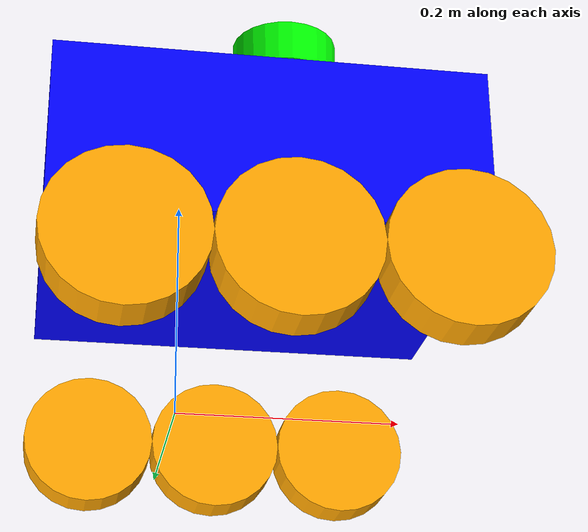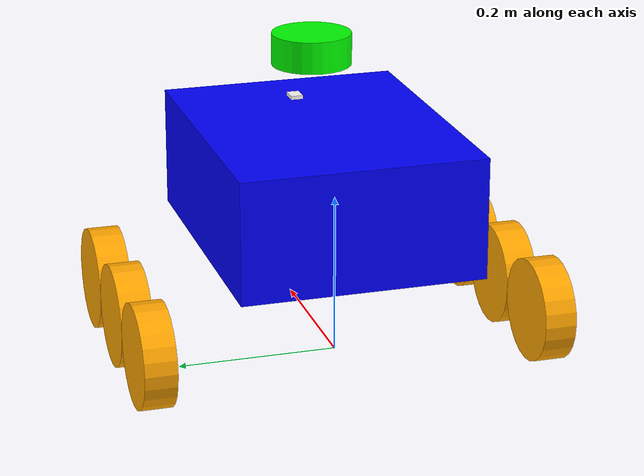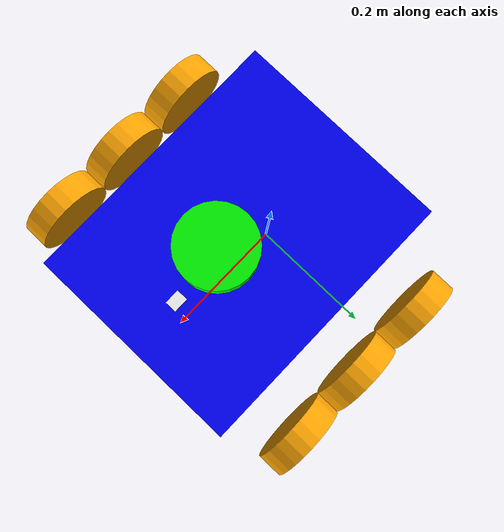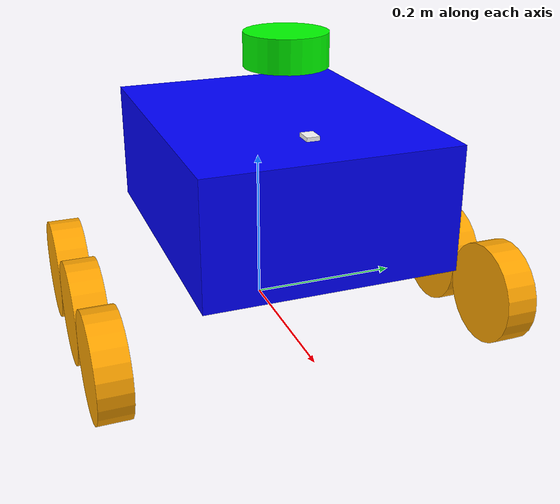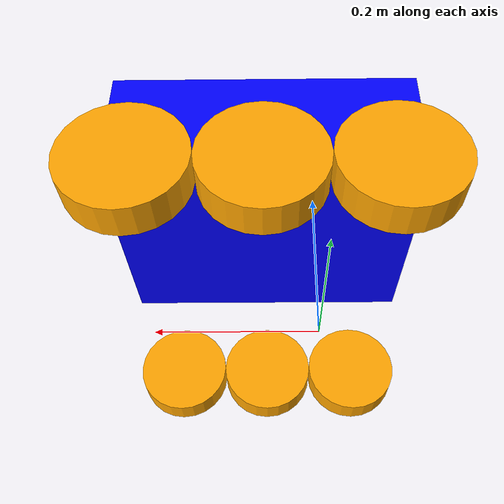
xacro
<?xml version ="1.0"?>
<robot xmlns:xacro="http://ros.org/wiki/xacro" name="retail_assistant">

    <xacro:include filename= "robot_core_treads.xacro"/>

    <xacro:include filename="gazebo_control_tracked.xacro"/>

   <xacro:include filename="lidar.xacro"/>

    <xacro:include filename="imu.xacro"/>

</robot>

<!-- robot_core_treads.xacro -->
<robot xmlns:xacro="http://ros.org/wiki/xacro">

    <xacro:include filename="inertial_macros.xacro"/>

    <material name="white">
        <color rgba="1 1 1 1"/>
    </material>

     <material name="green">
        <color rgba="0 1 0 1"/>
    </material>

    <material name="orange">
        <color rgba="1 0.647 0 1"/>
    </material>

    <material name="blue">
        <color rgba="0 0 1 1"/>
    </material>

    <material name="black">
        <color rgba="0 0 0 1"/>
    </material>
    <!--  Base LINk  -->
    <link name="base_link">

    </link>

    <joint name="base_footprint_joint" type="fixed">
        <parent link="base_link"/>
        <child link="base_footprint"/>
        <origin xyz="0 0 0" rpy="0 0 0"/>
    </joint>
    <link name="base_footprint">
    </link>

    <joint name="chassis_joint" type="fixed">
        <parent link="base_link"/>
        <child link="chassis"/>
        <origin xyz="-0.1 0 0"/>
    </joint>
<!--   Chassis    -->
    <link name="chassis">
        <visual>
            <origin xyz="0.165 0 0.2"/>
            <geometry>
                <box size="0.381 0.3048 0.1524"/>
            </geometry>
            <material name="blue"/>
        </visual>
         <collision>
            <origin xyz="0.165 0 0.2"/>
            <geometry>
                <box size="0.381 0.3048 0.1524"/>
            </geometry>
        </collision>
        <xacro:inertial_box mass="4.5" x="0.3302" y="0.4572" z="0.3048">
            <origin xyz="0.165 0 0.1524" rpy="0 0 0"/>
        </xacro:inertial_box>
    </link>

    <gazebo reference="chassis">
      <material>Gazebo/Blue</material>
    </gazebo>
    <!-- Left tread -->

<!-- Left invisble wheel to  actually drive do not add collision-->
<joint name="left_wheel_center_joint" type="continuous">
  <parent link="base_link"/>
  <child link="left_center_wheel"/>
  <origin xyz="0.065 0.25 0.05" rpy="-${pi/2} 0 0"/>
  <axis xyz="0 0 1"/>
</joint>

<link name="left_center_wheel">
  <visual>
    <geometry>
      <cylinder radius="0.065" length="0.04"/>
    </geometry>
    <material name="orange"/>
  </visual>
  <collision>
    <geometry>
      <cylinder radius="0.065" length="0.04"/>
    </geometry>
  </collision>
  <xacro:inertial_cylinder mass="0.2" length="0.04" radius="0.065">
    <origin xyz="0 0 0" rpy="0 0 0"/>
  </xacro:inertial_cylinder>
</link>

<gazebo reference="left_center_wheel">
   <material>Gazebo/Orange</material>
</gazebo>

<joint name="left_wheel_rear_joint" type="continuous">
  <parent link="base_link"/>
  <child link="left_rear_wheel"/>
  <origin xyz="-0.065 0.25 0.05" rpy="-${pi/2} 0 0"/>
  <axis xyz="0 0 1"/>
</joint>

<link name="left_rear_wheel">
  <visual>
    <geometry>
      <cylinder radius="0.065" length="0.04"/>
    </geometry>
    <material name="orange"/>
  </visual>
  <collision>
    <geometry>
      <cylinder radius="0.065" length="0.04"/>
    </geometry>
  </collision>
  <xacro:inertial_cylinder mass="0.2" length="0.04" radius="0.065">
    <origin xyz="0 0 0" rpy="0 0 0"/>
  </xacro:inertial_cylinder>
</link>

<gazebo reference="left_rear_wheel">
   <material>Gazebo/Orange</material>
   <mu1 value="0.001"/>
   <mu2 value="0.001"/>
</gazebo>

<joint name="left_wheel_front_joint" type="continuous">
  <parent link="base_link"/>
  <child link="left_front_wheel"/>
  <origin xyz="0.195 0.25 0.05" rpy="-${pi/2} 0 0"/>
  <axis xyz="0 0 1"/>
</joint>

<link name="left_front_wheel">
  <visual>
    <geometry>
      <cylinder radius="0.065" length="0.04"/>
    </geometry>
    <material name="orange"/>
  </visual>
  <collision>
    <geometry>
      <cylinder radius="0.065" length="0.04"/>
    </geometry>
  </collision>
  <xacro:inertial_cylinder mass="0.2" length="0.04" radius="0.065">
    <origin xyz="0 0 0" rpy="0 0 0"/>
  </xacro:inertial_cylinder>
</link>

<gazebo reference="left_front_wheel">
   <material>Gazebo/Orange</material>
   <mu1 value="0.001"/>
   <mu2 value="0.001"/>
</gazebo>
<!-- Right tread -->

<!-- Right invisble wheel to  actually drive do not add collision-->

<joint name="right_wheel_center_joint" type="continuous">
  <parent link="base_link"/>
  <child link="right_center_wheel"/>
  <origin xyz="0.065 -0.25 0.05" rpy="${pi/2} 0 0"/>
  <axis xyz="0 0 -1"/>
</joint>

<link name="right_center_wheel">
  <visual>
    <geometry>
      <cylinder radius="0.065" length="0.04"/>
    </geometry>
    <material name="orange"/>
  </visual>
    <collision>
    <geometry>
      <cylinder radius="0.065" length="0.04"/>
    </geometry>
  </collision>
  <xacro:inertial_cylinder mass="0.2" length="0.04" radius="0.065">
    <origin xyz="0 0 0" rpy=" 0 0 0"/>
  </xacro:inertial_cylinder>
</link>
<gazebo reference="right_center_wheel">
   <material>Gazebo/Orange</material>
</gazebo>

<joint name="right_wheel_front_joint" type="continuous">
  <parent link="base_link"/>
  <child link="right_front_wheel"/>
  <origin xyz="0.195 -0.25 0.05" rpy="${pi/2} 0 0"/>
  <axis xyz="0 0 -1"/>
</joint>

<link name="right_front_wheel">
  <visual>
    <geometry>
      <cylinder radius="0.065" length="0.04"/>
    </geometry>
    <material name="orange"/>
  </visual>
    <collision>
    <geometry>
      <cylinder radius="0.065" length="0.04"/>
    </geometry>
  </collision>
  <xacro:inertial_cylinder mass="0.2" length="0.04" radius="0.065">
    <origin xyz="0 0 0" rpy=" 0 0 0"/>
  </xacro:inertial_cylinder>
</link>
<gazebo reference="right_front_wheel">
   <material>Gazebo/Orange</material>
   <mu1 value="0.001"/>
   <mu2 value="0.001"/>
</gazebo>

<joint name="right_wheel_rear_joint" type="continuous">
  <parent link="base_link"/>
  <child link="right_rear_wheel"/>
  <origin xyz="-0.065 -0.25 0.05" rpy="${pi/2} 0 0"/>
  <axis xyz="0 0 -1"/>
</joint>

<link name="right_rear_wheel">
  <visual>
    <geometry>
      <cylinder radius="0.065" length="0.04"/>
    </geometry>
    <material name="orange"/>
  </visual>
    <collision>
    <geometry>
      <cylinder radius="0.065" length="0.04"/>
    </geometry>
  </collision>
  <xacro:inertial_cylinder mass="0.2" length="0.04" radius="0.065">
    <origin xyz="0 0 0" rpy=" 0 0 0"/>
  </xacro:inertial_cylinder>
</link>
<gazebo reference="right_rear_wheel">
   <material>Gazebo/Orange</material>
   <mu1 value="0.001"/>
   <mu2 value="0.001"/>
</gazebo>
<!-- Right invisble wheel to  actually drive do not add collision-->

<!-- caster wheel-->

</robot>

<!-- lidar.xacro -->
<robot xmlns:xacro="http://ros.org/wiki/xacro" name="retail_assistant">

  <joint name="lidar_joint" type="fixed">
    <parent link="chassis"/>
    <child link="laser_frame"/>
    <origin xyz="0.2 0 0.3625" rpy="0 0 0"/>
</joint>

<link name="laser_frame">
        <visual>
            <geometry>
                <cylinder radius="0.05" length="0.04"/>
            </geometry>
            <material name="green"/>
        </visual>
        <collision>
            <geometry>
                <cylinder radius="0.05" length="0.04"/>
            </geometry>
        </collision>
        <xacro:inertial_cylinder mass="0.1" length="0.04" radius="0.05">
            <origin xyz="0 0 0" rpy="0 0 0"/>
        </xacro:inertial_cylinder>
    </link>

    <gazebo reference="laser_frame">
        <material>Gazebo/Green</material>
        <sensor name="laser" type="gpu_lidar">  <!--TODO Add comments explaning what all this means-->
            <pose> 0 0 0 0 0 0</pose>
            <visualize>true</visualize>
            <update_rate>10</update_rate>
            <ray>
                <scan>
                    <horizontal>
                        <samples>360</samples>
                        <resolution>1</resolution>
                        <min_angle>-3.14</min_angle>
                        <max_angle>3.14</max_angle>
                    </horizontal>
                </scan>
                <range>
                    <min>0.3</min>
                    <max>12</max>
                    <resolution>0.01</resolution>
                </range>
            </ray>
            <topic> scan </topic>
            <ignition_frame_id> laser_frame </ignition_frame_id>
        </sensor>
    </gazebo>
</robot>

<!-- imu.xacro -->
<robot xmlns:xacro="http://ros.org/wiki/xacro" name="retail_assistant">

  <joint name="imu_joint" type="fixed">
    <parent link="chassis"/>
    <child link="imu_frame"/>
    <origin xyz="0.275 0 0.279" rpy="0 0 0"/>
</joint>

<link name="imu_frame">
        <visual>
            <geometry>
                <box size= "0.021 0.016 0.005"/>
            </geometry>
            <material name="white"/>
        </visual>
        <collision>
            <geometry>
               <box size= "0.021 0.016 0.005"/>
            </geometry>
        </collision>
        <xacro:inertial_box mass="0.1" x ="0.021" y="0.016" z="0.005">
            <origin xyz="0 0 0" rpy="0 0 0"/>
        </xacro:inertial_box>
    </link>
</robot>
